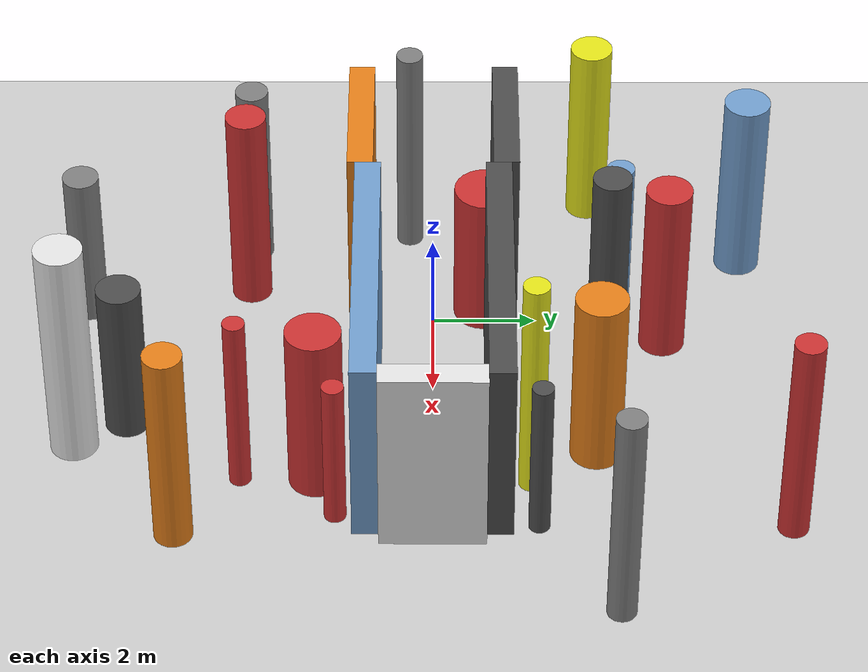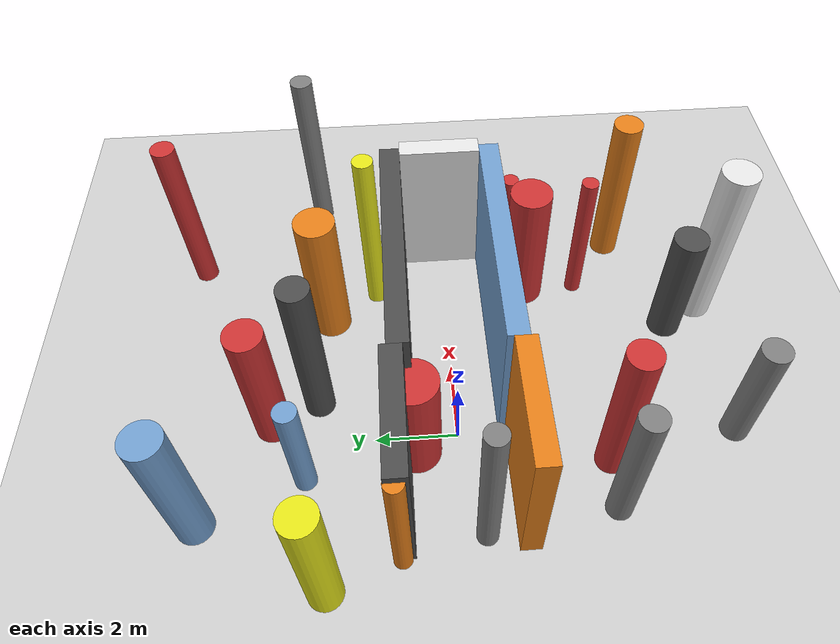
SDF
<?xml version='1.0'?>
<sdf version='1.6'>
  <world name='routeA_rl_v1__dense_recovery__rl_train__cul_de_sac_trap__000036'>
    <!-- Sun light -->
    <light name='sun' type='directional'>
      <cast_shadows>1</cast_shadows>
      <pose>0 0 10 0 0 0</pose>
      <diffuse>0.8 0.8 0.8 1</diffuse>
      <specular>0.2 0.2 0.2 1</specular>
      <attenuation>
        <range>1000</range>
        <constant>0.9</constant>
        <linear>0.01</linear>
        <quadratic>0.001</quadratic>
      </attenuation>
      <direction>-0.5 0.1 -0.9</direction>
    </light>

    <!-- Ground plane -->
    <model name='ground_plane'>
      <static>1</static>
      <link name='link'>
        <collision name='collision'>
          <geometry>
            <plane>
              <normal>0 0 1</normal>
              <size>100 100</size>
            </plane>
          </geometry>
          <surface>
            <contact>
              <collide_bitmask>65535</collide_bitmask>
              <ode/>
            </contact>
            <friction>
              <ode>
                <mu>100</mu>
                <mu2>50</mu2>
              </ode>
              <torsional><ode/></torsional>
            </friction>
            <bounce/>
          </surface>
          <max_contacts>10</max_contacts>
        </collision>
        <visual name='visual'>
          <cast_shadows>0</cast_shadows>
          <geometry>
            <plane>
              <normal>0 0 1</normal>
              <size>100 100</size>
            </plane>
          </geometry>
          <material>
            <script>
              <uri>file://media/materials/scripts/gazebo.material</uri>
              <n>Gazebo/Grey</n>
            </script>
          </material>
        </visual>
      </link>
    </model>

    <!-- Environment -->
    <magnetic_field>6e-06 2.3e-05 -4.2e-05</magnetic_field>
    <atmosphere type='adiabatic'/>
    <physics name='default_physics' default='0' type='ode'>
      <gravity>0 0 -9.8</gravity>
      <max_step_size>0.004</max_step_size>
      <real_time_factor>1</real_time_factor>
      <real_time_update_rate>250</real_time_update_rate>
    </physics>
    <scene>
      <ambient>0.4 0.4 0.4 1</ambient>
      <background>0.7 0.7 0.7 1</background>
      <shadows>1</shadows>
    </scene>
    <wind/>
    <spherical_coordinates>
      <surface_model>EARTH_WGS84</surface_model>
      <latitude_deg>0</latitude_deg>
      <longitude_deg>0</longitude_deg>
      <elevation>0</elevation>
      <heading_deg>0</heading_deg>
    </spherical_coordinates>

    <!-- ============ OBSTACLES (27) ============ -->
    <model name='trap_side_l'>
      <static>1</static>
      <link name='link'>
        <visual name='visual'>
          <geometry>
            <box>
              <size>6.0000 0.5000 4.0000</size>
            </box>
          </geometry>
          <material>
            <script>
              <n>Gazebo/Blue</n>
              <uri>file://media/materials/scripts/gazebo.material</uri>
            </script>
            <ambient>0.447 0.624 0.812 1</ambient>
          </material>
        </visual>
        <collision name='collision'>
          <geometry>
            <box>
              <size>6.0000 0.5000 4.0000</size>
            </box>
          </geometry>
          <max_contacts>10</max_contacts>
          <surface>
            <contact><ode/></contact>
            <bounce/>
            <friction>
              <ode><mu>1</mu><mu2>1</mu2></ode>
              <torsional><ode/></torsional>
            </friction>
          </surface>
        </collision>
      </link>
      <pose>3.0000 -1.2500 2.0000 0 0 0.0000</pose>
    </model>

    <model name='trap_side_r'>
      <static>1</static>
      <link name='link'>
        <visual name='visual'>
          <geometry>
            <box>
              <size>6.0000 0.5000 4.0000</size>
            </box>
          </geometry>
          <material>
            <script>
              <n>Gazebo/DarkGrey</n>
              <uri>file://media/materials/scripts/gazebo.material</uri>
            </script>
            <ambient>0.3 0.3 0.3 1</ambient>
          </material>
        </visual>
        <collision name='collision'>
          <geometry>
            <box>
              <size>6.0000 0.5000 4.0000</size>
            </box>
          </geometry>
          <max_contacts>10</max_contacts>
          <surface>
            <contact><ode/></contact>
            <bounce/>
            <friction>
              <ode><mu>1</mu><mu2>1</mu2></ode>
              <torsional><ode/></torsional>
            </friction>
          </surface>
        </collision>
      </link>
      <pose>3.0000 1.2500 2.0000 0 0 0.0000</pose>
    </model>

    <model name='trap_back'>
      <static>1</static>
      <link name='link'>
        <visual name='visual'>
          <geometry>
            <box>
              <size>0.5000 2.0000 4.0000</size>
            </box>
          </geometry>
          <material>
            <script>
              <n>Gazebo/White</n>
              <uri>file://media/materials/scripts/gazebo.material</uri>
            </script>
            <ambient>0.9 0.9 0.9 1</ambient>
          </material>
        </visual>
        <collision name='collision'>
          <geometry>
            <box>
              <size>0.5000 2.0000 4.0000</size>
            </box>
          </geometry>
          <max_contacts>10</max_contacts>
          <surface>
            <contact><ode/></contact>
            <bounce/>
            <friction>
              <ode><mu>1</mu><mu2>1</mu2></ode>
              <torsional><ode/></torsional>
            </friction>
          </surface>
        </collision>
      </link>
      <pose>6.0000 0.0000 2.0000 0 0 0.0000</pose>
    </model>

    <model name='trap_funnel_l'>
      <static>1</static>
      <link name='link'>
        <visual name='visual'>
          <geometry>
            <box>
              <size>3.0000 0.5000 4.0000</size>
            </box>
          </geometry>
          <material>
            <script>
              <n>Gazebo/Orange</n>
              <uri>file://media/materials/scripts/gazebo.material</uri>
            </script>
            <ambient>0.9 0.5 0.1 1</ambient>
          </material>
        </visual>
        <collision name='collision'>
          <geometry>
            <box>
              <size>3.0000 0.5000 4.0000</size>
            </box>
          </geometry>
          <max_contacts>10</max_contacts>
          <surface>
            <contact><ode/></contact>
            <bounce/>
            <friction>
              <ode><mu>1</mu><mu2>1</mu2></ode>
              <torsional><ode/></torsional>
            </friction>
          </surface>
        </collision>
      </link>
      <pose>-1.5000 -1.4000 2.0000 0 0 0.0000</pose>
    </model>

    <model name='trap_funnel_r'>
      <static>1</static>
      <link name='link'>
        <visual name='visual'>
          <geometry>
            <box>
              <size>3.0000 0.5000 4.0000</size>
            </box>
          </geometry>
          <material>
            <script>
              <n>Gazebo/DarkGrey</n>
              <uri>file://media/materials/scripts/gazebo.material</uri>
            </script>
            <ambient>0.3 0.3 0.3 1</ambient>
          </material>
        </visual>
        <collision name='collision'>
          <geometry>
            <box>
              <size>3.0000 0.5000 4.0000</size>
            </box>
          </geometry>
          <max_contacts>10</max_contacts>
          <surface>
            <contact><ode/></contact>
            <bounce/>
            <friction>
              <ode><mu>1</mu><mu2>1</mu2></ode>
              <torsional><ode/></torsional>
            </friction>
          </surface>
        </collision>
      </link>
      <pose>-1.5000 1.4000 2.0000 0 0 0.0000</pose>
    </model>

    <model name='trap_scatter_0'>
      <static>1</static>
      <link name='link'>
        <visual name='visual'>
          <geometry>
            <cylinder>
              <radius>0.4092</radius>
              <length>4.0160</length>
            </cylinder>
          </geometry>
          <material>
            <script>
              <n>Gazebo/Yellow</n>
              <uri>file://media/materials/scripts/gazebo.material</uri>
            </script>
            <ambient>0.9 0.9 0.1 1</ambient>
          </material>
        </visual>
        <collision name='collision'>
          <geometry>
            <cylinder>
              <radius>0.4092</radius>
              <length>4.0160</length>
            </cylinder>
          </geometry>
          <max_contacts>10</max_contacts>
          <surface>
            <contact><ode/></contact>
            <bounce/>
            <friction>
              <ode><mu>1</mu><mu2>1</mu2></ode>
              <torsional><ode/></torsional>
            </friction>
          </surface>
        </collision>
      </link>
      <pose>-3.6011 3.1305 2.0080 0 0 0.0000</pose>
    </model>

    <model name='trap_scatter_1'>
      <static>1</static>
      <link name='link'>
        <visual name='visual'>
          <geometry>
            <cylinder>
              <radius>0.4466</radius>
              <length>3.7997</length>
            </cylinder>
          </geometry>
          <material>
            <script>
              <n>Gazebo/Red</n>
              <uri>file://media/materials/scripts/gazebo.material</uri>
            </script>
            <ambient>0.8 0.2 0.2 1</ambient>
          </material>
        </visual>
        <collision name='collision'>
          <geometry>
            <cylinder>
              <radius>0.4466</radius>
              <length>3.7997</length>
            </cylinder>
          </geometry>
          <max_contacts>10</max_contacts>
          <surface>
            <contact><ode/></contact>
            <bounce/>
            <friction>
              <ode><mu>1</mu><mu2>1</mu2></ode>
              <torsional><ode/></torsional>
            </friction>
          </surface>
        </collision>
      </link>
      <pose>0.5959 4.4769 1.8999 0 0 0.0000</pose>
    </model>

    <model name='trap_scatter_2'>
      <static>1</static>
      <link name='link'>
        <visual name='visual'>
          <geometry>
            <cylinder>
              <radius>0.2682</radius>
              <length>3.1203</length>
            </cylinder>
          </geometry>
          <material>
            <script>
              <n>Gazebo/Blue</n>
              <uri>file://media/materials/scripts/gazebo.material</uri>
            </script>
            <ambient>0.447 0.624 0.812 1</ambient>
          </material>
        </visual>
        <collision name='collision'>
          <geometry>
            <cylinder>
              <radius>0.2682</radius>
              <length>3.1203</length>
            </cylinder>
          </geometry>
          <max_contacts>10</max_contacts>
          <surface>
            <contact><ode/></contact>
            <bounce/>
            <friction>
              <ode><mu>1</mu><mu2>1</mu2></ode>
              <torsional><ode/></torsional>
            </friction>
          </surface>
        </collision>
      </link>
      <pose>-0.9216 3.6434 1.5602 0 0 0.0000</pose>
    </model>

    <model name='trap_scatter_3'>
      <static>1</static>
      <link name='link'>
        <visual name='visual'>
          <geometry>
            <cylinder>
              <radius>0.4595</radius>
              <length>4.8125</length>
            </cylinder>
          </geometry>
          <material>
            <script>
              <n>Gazebo/White</n>
              <uri>file://media/materials/scripts/gazebo.material</uri>
            </script>
            <ambient>0.9 0.9 0.9 1</ambient>
          </material>
        </visual>
        <collision name='collision'>
          <geometry>
            <cylinder>
              <radius>0.4595</radius>
              <length>4.8125</length>
            </cylinder>
          </geometry>
          <max_contacts>10</max_contacts>
          <surface>
            <contact><ode/></contact>
            <bounce/>
            <friction>
              <ode><mu>1</mu><mu2>1</mu2></ode>
              <torsional><ode/></torsional>
            </friction>
          </surface>
        </collision>
      </link>
      <pose>3.5920 -6.7979 2.4063 0 0 0.0000</pose>
    </model>

    <model name='trap_scatter_4'>
      <static>1</static>
      <link name='link'>
        <visual name='visual'>
          <geometry>
            <cylinder>
              <radius>0.4256</radius>
              <length>3.3398</length>
            </cylinder>
          </geometry>
          <material>
            <script>
              <n>Gazebo/DarkGrey</n>
              <uri>file://media/materials/scripts/gazebo.material</uri>
            </script>
            <ambient>0.3 0.3 0.3 1</ambient>
          </material>
        </visual>
        <collision name='collision'>
          <geometry>
            <cylinder>
              <radius>0.4256</radius>
              <length>3.3398</length>
            </cylinder>
          </geometry>
          <max_contacts>10</max_contacts>
          <surface>
            <contact><ode/></contact>
            <bounce/>
            <friction>
              <ode><mu>1</mu><mu2>1</mu2></ode>
              <torsional><ode/></torsional>
            </friction>
          </surface>
        </collision>
      </link>
      <pose>2.9676 -5.8321 1.6699 0 0 0.0000</pose>
    </model>

    <model name='trap_scatter_5'>
      <static>1</static>
      <link name='link'>
        <visual name='visual'>
          <geometry>
            <cylinder>
              <radius>0.2024</radius>
              <length>3.4355</length>
            </cylinder>
          </geometry>
          <material>
            <script>
              <n>Gazebo/DarkGrey</n>
              <uri>file://media/materials/scripts/gazebo.material</uri>
            </script>
            <ambient>0.3 0.3 0.3 1</ambient>
          </material>
        </visual>
        <collision name='collision'>
          <geometry>
            <cylinder>
              <radius>0.2024</radius>
              <length>3.4355</length>
            </cylinder>
          </geometry>
          <max_contacts>10</max_contacts>
          <surface>
            <contact><ode/></contact>
            <bounce/>
            <friction>
              <ode><mu>1</mu><mu2>1</mu2></ode>
              <torsional><ode/></torsional>
            </friction>
          </surface>
        </collision>
      </link>
      <pose>5.7645 1.9750 1.7177 0 0 0.0000</pose>
    </model>

    <model name='trap_scatter_7'>
      <static>1</static>
      <link name='link'>
        <visual name='visual'>
          <geometry>
            <cylinder>
              <radius>0.5018</radius>
              <length>3.8083</length>
            </cylinder>
          </geometry>
          <material>
            <script>
              <n>Gazebo/Orange</n>
              <uri>file://media/materials/scripts/gazebo.material</uri>
            </script>
            <ambient>0.9 0.5 0.1 1</ambient>
          </material>
        </visual>
        <collision name='collision'>
          <geometry>
            <cylinder>
              <radius>0.5018</radius>
              <length>3.8083</length>
            </cylinder>
          </geometry>
          <max_contacts>10</max_contacts>
          <surface>
            <contact><ode/></contact>
            <bounce/>
            <friction>
              <ode><mu>1</mu><mu2>1</mu2></ode>
              <torsional><ode/></torsional>
            </friction>
          </surface>
        </collision>
      </link>
      <pose>3.7575 3.0903 1.9042 0 0 0.0000</pose>
    </model>

    <model name='trap_scatter_8'>
      <static>1</static>
      <link name='link'>
        <visual name='visual'>
          <geometry>
            <cylinder>
              <radius>0.2085</radius>
              <length>3.2082</length>
            </cylinder>
          </geometry>
          <material>
            <script>
              <n>Gazebo/Red</n>
              <uri>file://media/materials/scripts/gazebo.material</uri>
            </script>
            <ambient>0.8 0.2 0.2 1</ambient>
          </material>
        </visual>
        <collision name='collision'>
          <geometry>
            <cylinder>
              <radius>0.2085</radius>
              <length>3.2082</length>
            </cylinder>
          </geometry>
          <max_contacts>10</max_contacts>
          <surface>
            <contact><ode/></contact>
            <bounce/>
            <friction>
              <ode><mu>1</mu><mu2>1</mu2></ode>
              <torsional><ode/></torsional>
            </friction>
          </surface>
        </collision>
      </link>
      <pose>5.4930 -1.8089 1.6041 0 0 0.0000</pose>
    </model>

    <model name='trap_scatter_9'>
      <static>1</static>
      <link name='link'>
        <visual name='visual'>
          <geometry>
            <cylinder>
              <radius>0.2202</radius>
              <length>3.8197</length>
            </cylinder>
          </geometry>
          <material>
            <script>
              <n>Gazebo/Orange</n>
              <uri>file://media/materials/scripts/gazebo.material</uri>
            </script>
            <ambient>0.9 0.5 0.1 1</ambient>
          </material>
        </visual>
        <collision name='collision'>
          <geometry>
            <cylinder>
              <radius>0.2202</radius>
              <length>3.8197</length>
            </cylinder>
          </geometry>
          <max_contacts>10</max_contacts>
          <surface>
            <contact><ode/></contact>
            <bounce/>
            <friction>
              <ode><mu>1</mu><mu2>1</mu2></ode>
              <torsional><ode/></torsional>
            </friction>
          </surface>
        </collision>
      </link>
      <pose>-3.0014 1.4424 1.9099 0 0 0.0000</pose>
    </model>

    <model name='trap_scatter_10'>
      <static>1</static>
      <link name='link'>
        <visual name='visual'>
          <geometry>
            <cylinder>
              <radius>0.2948</radius>
              <length>4.5280</length>
            </cylinder>
          </geometry>
          <material>
            <script>
              <n>Gazebo/Red</n>
              <uri>file://media/materials/scripts/gazebo.material</uri>
            </script>
            <ambient>0.8 0.2 0.2 1</ambient>
          </material>
        </visual>
        <collision name='collision'>
          <geometry>
            <cylinder>
              <radius>0.2948</radius>
              <length>4.5280</length>
            </cylinder>
          </geometry>
          <max_contacts>10</max_contacts>
          <surface>
            <contact><ode/></contact>
            <bounce/>
            <friction>
              <ode><mu>1</mu><mu2>1</mu2></ode>
              <torsional><ode/></torsional>
            </friction>
          </surface>
        </collision>
      </link>
      <pose>5.7917 6.6710 2.2640 0 0 0.0000</pose>
    </model>

    <model name='trap_scatter_11'>
      <static>1</static>
      <link name='link'>
        <visual name='visual'>
          <geometry>
            <cylinder>
              <radius>0.3500</radius>
              <length>3.3285</length>
            </cylinder>
          </geometry>
          <material>
            <script>
              <n>Gazebo/Grey</n>
              <uri>file://media/materials/scripts/gazebo.material</uri>
            </script>
            <ambient>0.5 0.5 0.5 1</ambient>
          </material>
        </visual>
        <collision name='collision'>
          <geometry>
            <cylinder>
              <radius>0.3500</radius>
              <length>3.3285</length>
            </cylinder>
          </geometry>
          <max_contacts>10</max_contacts>
          <surface>
            <contact><ode/></contact>
            <bounce/>
            <friction>
              <ode><mu>1</mu><mu2>1</mu2></ode>
              <torsional><ode/></torsional>
            </friction>
          </surface>
        </collision>
      </link>
      <pose>-0.3543 -6.7880 1.6642 0 0 0.0000</pose>
    </model>

    <model name='trap_scatter_13'>
      <static>1</static>
      <link name='link'>
        <visual name='visual'>
          <geometry>
            <cylinder>
              <radius>0.3201</radius>
              <length>4.0279</length>
            </cylinder>
          </geometry>
          <material>
            <script>
              <n>Gazebo/Grey</n>
              <uri>file://media/materials/scripts/gazebo.material</uri>
            </script>
            <ambient>0.5 0.5 0.5 1</ambient>
          </material>
        </visual>
        <collision name='collision'>
          <geometry>
            <cylinder>
              <radius>0.3201</radius>
              <length>4.0279</length>
            </cylinder>
          </geometry>
          <max_contacts>10</max_contacts>
          <surface>
            <contact><ode/></contact>
            <bounce/>
            <friction>
              <ode><mu>1</mu><mu2>1</mu2></ode>
              <torsional><ode/></torsional>
            </friction>
          </surface>
        </collision>
      </link>
      <pose>-2.1656 -3.5466 2.0139 0 0 0.0000</pose>
    </model>

    <model name='trap_scatter_14'>
      <static>1</static>
      <link name='link'>
        <visual name='visual'>
          <geometry>
            <cylinder>
              <radius>0.3708</radius>
              <length>4.5290</length>
            </cylinder>
          </geometry>
          <material>
            <script>
              <n>Gazebo/DarkGrey</n>
              <uri>file://media/materials/scripts/gazebo.material</uri>
            </script>
            <ambient>0.3 0.3 0.3 1</ambient>
          </material>
        </visual>
        <collision name='collision'>
          <geometry>
            <cylinder>
              <radius>0.3708</radius>
              <length>4.5290</length>
            </cylinder>
          </geometry>
          <max_contacts>10</max_contacts>
          <surface>
            <contact><ode/></contact>
            <bounce/>
            <friction>
              <ode><mu>1</mu><mu2>1</mu2></ode>
              <torsional><ode/></torsional>
            </friction>
          </surface>
        </collision>
      </link>
      <pose>1.1488 3.3515 2.2645 0 0 0.0000</pose>
    </model>

    <model name='trap_scatter_15'>
      <static>1</static>
      <link name='link'>
        <visual name='visual'>
          <geometry>
            <cylinder>
              <radius>0.2102</radius>
              <length>3.8625</length>
            </cylinder>
          </geometry>
          <material>
            <script>
              <n>Gazebo/Red</n>
              <uri>file://media/materials/scripts/gazebo.material</uri>
            </script>
            <ambient>0.8 0.2 0.2 1</ambient>
          </material>
        </visual>
        <collision name='collision'>
          <geometry>
            <cylinder>
              <radius>0.2102</radius>
              <length>3.8625</length>
            </cylinder>
          </geometry>
          <max_contacts>10</max_contacts>
          <surface>
            <contact><ode/></contact>
            <bounce/>
            <friction>
              <ode><mu>1</mu><mu2>1</mu2></ode>
              <torsional><ode/></torsional>
            </friction>
          </surface>
        </collision>
      </link>
      <pose>4.5193 -3.6109 1.9313 0 0 0.0000</pose>
    </model>

    <model name='trap_scatter_16'>
      <static>1</static>
      <link name='link'>
        <visual name='visual'>
          <geometry>
            <cylinder>
              <radius>0.4470</radius>
              <length>4.0089</length>
            </cylinder>
          </geometry>
          <material>
            <script>
              <n>Gazebo/Blue</n>
              <uri>file://media/materials/scripts/gazebo.material</uri>
            </script>
            <ambient>0.447 0.624 0.812 1</ambient>
          </material>
        </visual>
        <collision name='collision'>
          <geometry>
            <cylinder>
              <radius>0.4470</radius>
              <length>4.0089</length>
            </cylinder>
          </geometry>
          <max_contacts>10</max_contacts>
          <surface>
            <contact><ode/></contact>
            <bounce/>
            <friction>
              <ode><mu>1</mu><mu2>1</mu2></ode>
              <torsional><ode/></torsional>
            </friction>
          </surface>
        </collision>
      </link>
      <pose>-1.8614 6.1030 2.0044 0 0 0.0000</pose>
    </model>

    <model name='trap_scatter_17'>
      <static>1</static>
      <link name='link'>
        <visual name='visual'>
          <geometry>
            <cylinder>
              <radius>0.5946</radius>
              <length>3.0695</length>
            </cylinder>
          </geometry>
          <material>
            <script>
              <n>Gazebo/Red</n>
              <uri>file://media/materials/scripts/gazebo.material</uri>
            </script>
            <ambient>0.8 0.2 0.2 1</ambient>
          </material>
        </visual>
        <collision name='collision'>
          <geometry>
            <cylinder>
              <radius>0.5946</radius>
              <length>3.0695</length>
            </cylinder>
          </geometry>
          <max_contacts>10</max_contacts>
          <surface>
            <contact><ode/></contact>
            <bounce/>
            <friction>
              <ode><mu>1</mu><mu2>1</mu2></ode>
              <torsional><ode/></torsional>
            </friction>
          </surface>
        </collision>
      </link>
      <pose>-0.3494 1.0023 1.5348 0 0 0.0000</pose>
    </model>

    <model name='trap_scatter_18'>
      <static>1</static>
      <link name='link'>
        <visual name='visual'>
          <geometry>
            <cylinder>
              <radius>0.3679</radius>
              <length>4.3942</length>
            </cylinder>
          </geometry>
          <material>
            <script>
              <n>Gazebo/Orange</n>
              <uri>file://media/materials/scripts/gazebo.material</uri>
            </script>
            <ambient>0.9 0.5 0.1 1</ambient>
          </material>
        </visual>
        <collision name='collision'>
          <geometry>
            <cylinder>
              <radius>0.3679</radius>
              <length>4.3942</length>
            </cylinder>
          </geometry>
          <max_contacts>10</max_contacts>
          <surface>
            <contact><ode/></contact>
            <bounce/>
            <friction>
              <ode><mu>1</mu><mu2>1</mu2></ode>
              <torsional><ode/></torsional>
            </friction>
          </surface>
        </collision>
      </link>
      <pose>5.9903 -4.7852 2.1971 0 0 0.0000</pose>
    </model>

    <model name='trap_scatter_19'>
      <static>1</static>
      <link name='link'>
        <visual name='visual'>
          <geometry>
            <cylinder>
              <radius>0.5268</radius>
              <length>3.6475</length>
            </cylinder>
          </geometry>
          <material>
            <script>
              <n>Gazebo/Red</n>
              <uri>file://media/materials/scripts/gazebo.material</uri>
            </script>
            <ambient>0.8 0.2 0.2 1</ambient>
          </material>
        </visual>
        <collision name='collision'>
          <geometry>
            <cylinder>
              <radius>0.5268</radius>
              <length>3.6475</length>
            </cylinder>
          </geometry>
          <max_contacts>10</max_contacts>
          <surface>
            <contact><ode/></contact>
            <bounce/>
            <friction>
              <ode><mu>1</mu><mu2>1</mu2></ode>
              <torsional><ode/></torsional>
            </friction>
          </surface>
        </collision>
      </link>
      <pose>4.4961 -2.1808 1.8237 0 0 0.0000</pose>
    </model>

    <model name='trap_scatter_21'>
      <static>1</static>
      <link name='link'>
        <visual name='visual'>
          <geometry>
            <cylinder>
              <radius>0.2511</radius>
              <length>4.8478</length>
            </cylinder>
          </geometry>
          <material>
            <script>
              <n>Gazebo/Yellow</n>
              <uri>file://media/materials/scripts/gazebo.material</uri>
            </script>
            <ambient>0.9 0.9 0.1 1</ambient>
          </material>
        </visual>
        <collision name='collision'>
          <geometry>
            <cylinder>
              <radius>0.2511</radius>
              <length>4.8478</length>
            </cylinder>
          </geometry>
          <max_contacts>10</max_contacts>
          <surface>
            <contact><ode/></contact>
            <bounce/>
            <friction>
              <ode><mu>1</mu><mu2>1</mu2></ode>
              <torsional><ode/></torsional>
            </friction>
          </surface>
        </collision>
      </link>
      <pose>4.6077 1.8562 2.4239 0 0 0.0000</pose>
    </model>

    <model name='trap_scatter_22'>
      <static>1</static>
      <link name='link'>
        <visual name='visual'>
          <geometry>
            <cylinder>
              <radius>0.3930</radius>
              <length>4.3596</length>
            </cylinder>
          </geometry>
          <material>
            <script>
              <n>Gazebo/Red</n>
              <uri>file://media/materials/scripts/gazebo.material</uri>
            </script>
            <ambient>0.8 0.2 0.2 1</ambient>
          </material>
        </visual>
        <collision name='collision'>
          <geometry>
            <cylinder>
              <radius>0.3930</radius>
              <length>4.3596</length>
            </cylinder>
          </geometry>
          <max_contacts>10</max_contacts>
          <surface>
            <contact><ode/></contact>
            <bounce/>
            <friction>
              <ode><mu>1</mu><mu2>1</mu2></ode>
              <torsional><ode/></torsional>
            </friction>
          </surface>
        </collision>
      </link>
      <pose>-0.9301 -3.6033 2.1798 0 0 0.0000</pose>
    </model>

    <model name='trap_scatter_23'>
      <static>1</static>
      <link name='link'>
        <visual name='visual'>
          <geometry>
            <cylinder>
              <radius>0.2796</radius>
              <length>4.7120</length>
            </cylinder>
          </geometry>
          <material>
            <script>
              <n>Gazebo/Grey</n>
              <uri>file://media/materials/scripts/gazebo.material</uri>
            </script>
            <ambient>0.5 0.5 0.5 1</ambient>
          </material>
        </visual>
        <collision name='collision'>
          <geometry>
            <cylinder>
              <radius>0.2796</radius>
              <length>4.7120</length>
            </cylinder>
          </geometry>
          <max_contacts>10</max_contacts>
          <surface>
            <contact><ode/></contact>
            <bounce/>
            <friction>
              <ode><mu>1</mu><mu2>1</mu2></ode>
              <torsional><ode/></torsional>
            </friction>
          </surface>
        </collision>
      </link>
      <pose>7.9533 3.4146 2.3560 0 0 0.0000</pose>
    </model>

    <model name='trap_scatter_24'>
      <static>1</static>
      <link name='link'>
        <visual name='visual'>
          <geometry>
            <cylinder>
              <radius>0.2580</radius>
              <length>4.5941</length>
            </cylinder>
          </geometry>
          <material>
            <script>
              <n>Gazebo/Grey</n>
              <uri>file://media/materials/scripts/gazebo.material</uri>
            </script>
            <ambient>0.5 0.5 0.5 1</ambient>
          </material>
        </visual>
        <collision name='collision'>
          <geometry>
            <cylinder>
              <radius>0.2580</radius>
              <length>4.5941</length>
            </cylinder>
          </geometry>
          <max_contacts>10</max_contacts>
          <surface>
            <contact><ode/></contact>
            <bounce/>
            <friction>
              <ode><mu>1</mu><mu2>1</mu2></ode>
              <torsional><ode/></torsional>
            </friction>
          </surface>
        </collision>
      </link>
      <pose>-2.5855 -0.4666 2.2971 0 0 0.0000</pose>
    </model>

    <!-- GUI camera -->
    <gui fullscreen='0'>
      <camera name='user_camera'>
        <pose>-15 0 18 0 0.85 0.15</pose>
        <view_controller>orbit</view_controller>
        <projection_type>perspective</projection_type>
      </camera>
    </gui>
  </world>
</sdf>
